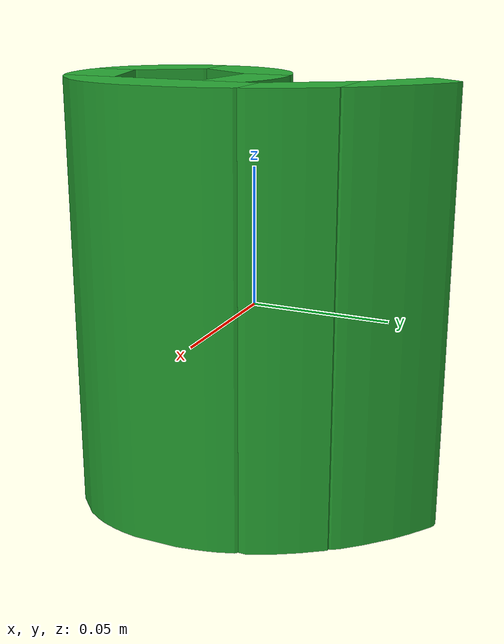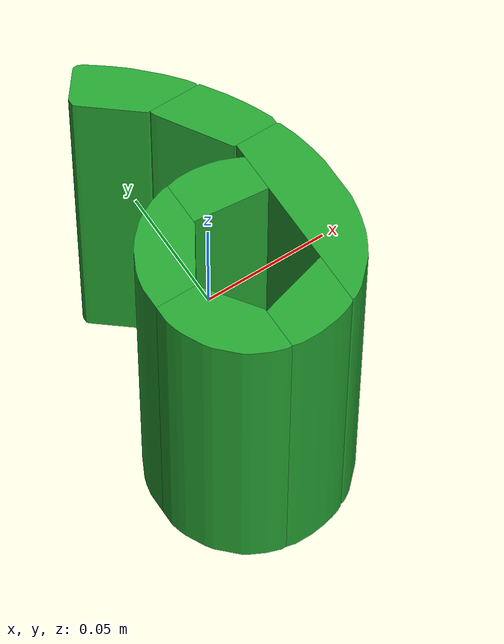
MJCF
<?xml version="1.0" ?>
<mujoco model="peg9">
    <asset>
        <mesh file="peg/0.stl" name="mesh_0"/>
        <mesh file="peg/1.stl" name="mesh_1"/>
        <mesh file="peg/2.stl" name="mesh_2"/>
        <mesh file="peg/3.stl" name="mesh_3"/>
        <mesh file="peg/4.stl" name="mesh_4"/>
        <mesh file="peg/5.stl" name="mesh_5"/>
        <mesh file="peg/6.stl" name="mesh_6"/>
        <texture file="../texture/green-wood.png" name="green-wood"/>
        <material name="greenwood_mat" texture="green-wood" texrepeat="1 1" specular="0.4" shininess="0.1"/>
    </asset>
    <worldbody>
        <body>
            <body name="object">
                <geom mesh="mesh_0" type="mesh" group="0" material="greenwood_mat"/>
                <geom mesh="mesh_1" type="mesh" group="0" material="greenwood_mat"/>
                <geom mesh="mesh_2" type="mesh" group="0" material="greenwood_mat"/>
                <geom mesh="mesh_3" type="mesh" group="0" material="greenwood_mat"/>
                <geom mesh="mesh_4" type="mesh" group="0" material="greenwood_mat"/>
                <geom mesh="mesh_5" type="mesh" group="0" material="greenwood_mat"/>
                <geom mesh="mesh_6" type="mesh" group="0" material="greenwood_mat"/>
            </body>
        </body>
    </worldbody>
</mujoco>
